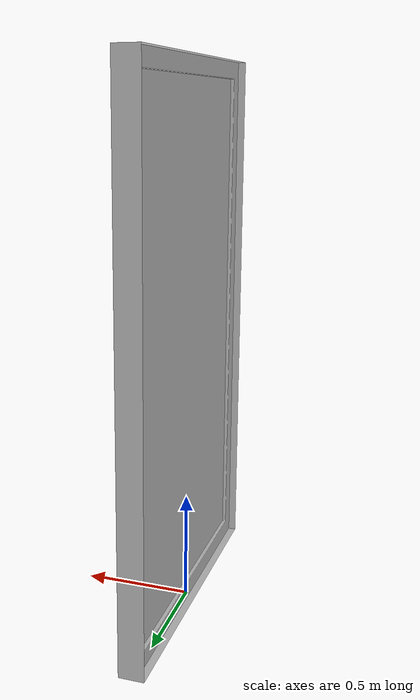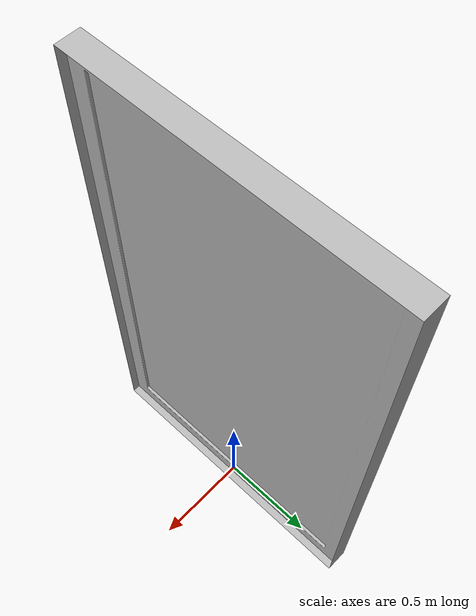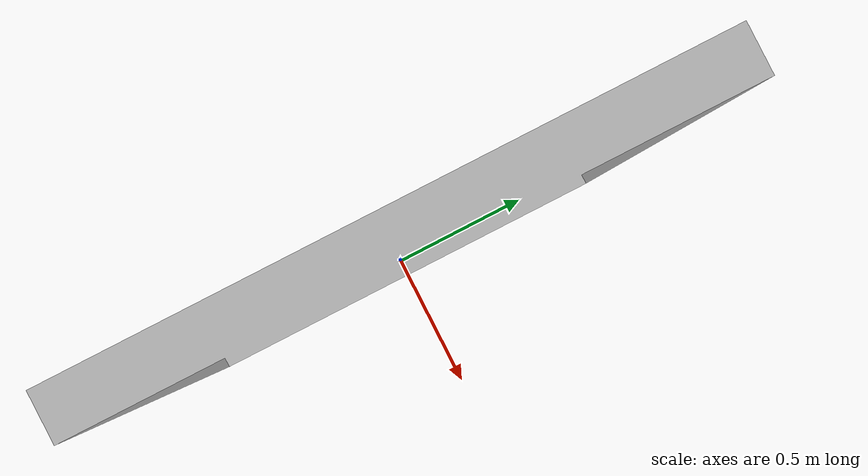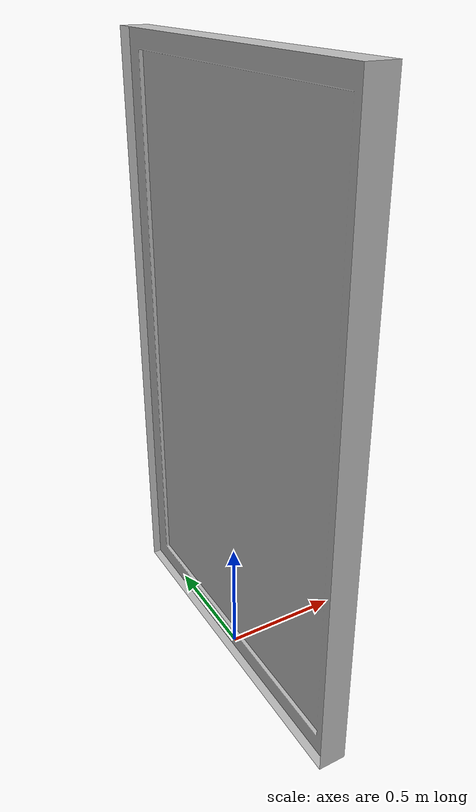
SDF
<?xml version='1.0'?>
<sdf version='1.4'>
  <model name='752'>
    <pose>0 0 0 0 0 0</pose>
    <static>true</static>
    <link name='link'>
      <collision name='collision'>
        <pose>0 0 0 0 0 0</pose>
        <geometry>
          <box>
            <size>0.115 1.5 2</size>
          </box>
        </geometry>
      </collision>
      <visual name='visual'>
        <pose>0 0 0 0 0 0</pose>
        <geometry>
          <mesh><uri>model://752/752.dae</uri></mesh>
        </geometry>
      </visual>
    </link>
  </model>
</sdf>
